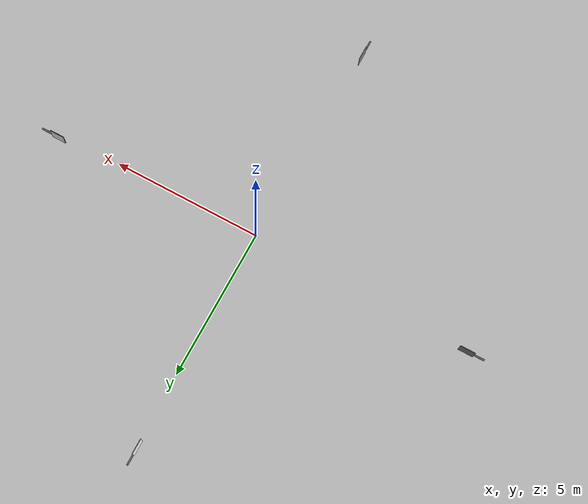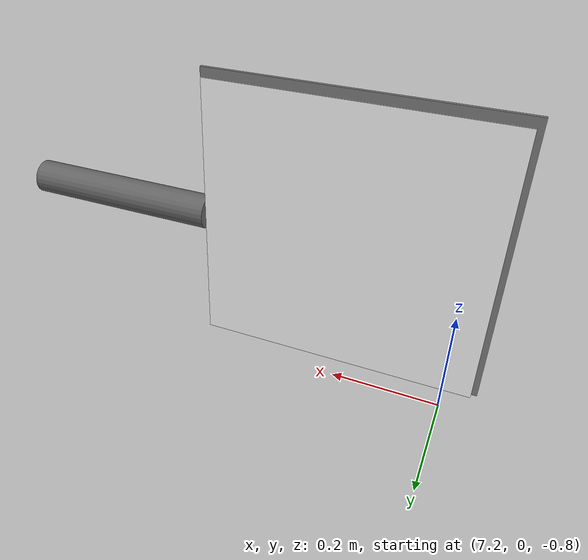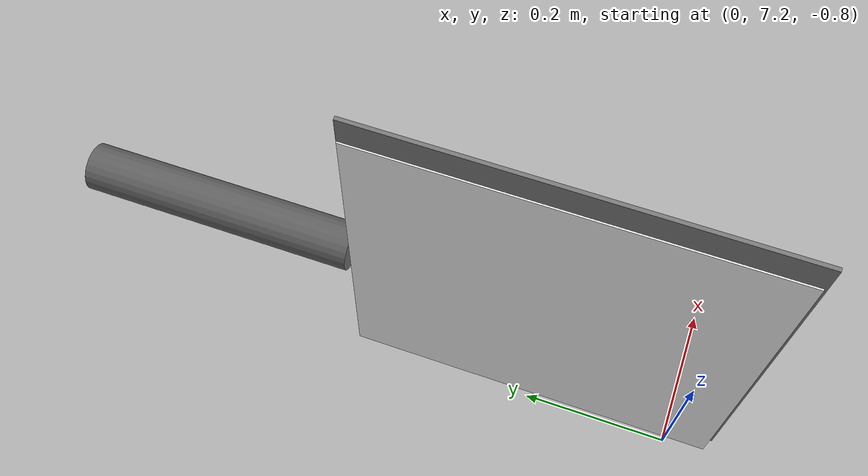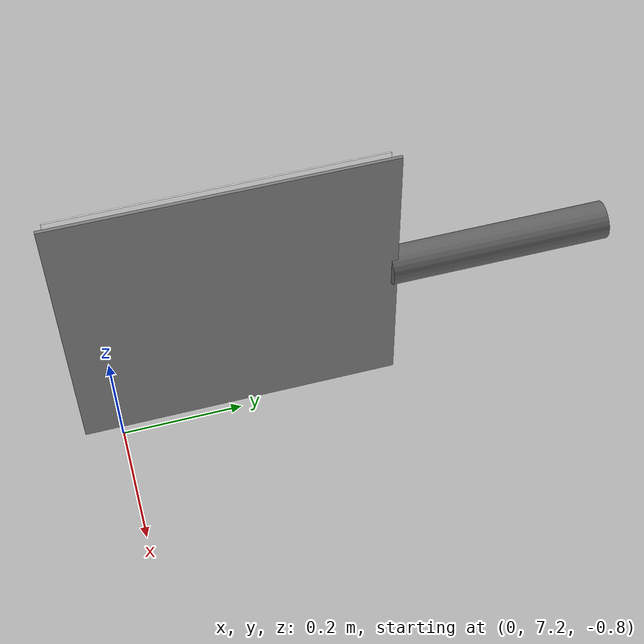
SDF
<?xml version="1.0"?>

<sdf version="1.6">
  <world name="default">

    <include>
      <uri>model://sun</uri>
    </include>

    <model name="marker0">
      <include>
        <static>true</static>
        <uri>model://marker_0</uri>
      </include>
      <pose>8.0 0.0 -0.5 0 -1.5707963267948966 0</pose>
    </model>
    <model name="marker1">
      <include>
        <static>true</static>
        <uri>model://marker_1</uri>
      </include>
      <pose>4.898587196589413e-16 -8.0 -0.5 -1.5707963267948966 -1.5707963267948966 0</pose>
    </model>
    <model name="marker2">
      <include>
        <static>true</static>
        <uri>model://marker_2</uri>
      </include>
      <pose>-8.0 -9.797174393178826e-16 -0.5 -3.141592653589793 -1.5707963267948966 0</pose>
    </model>
    <model name="marker3">
      <include>
        <static>true</static>
        <uri>model://marker_3</uri>
      </include>
      <pose>-1.4695761589768238e-15 8.0 -0.5 -4.71238898038469 -1.5707963267948966 0</pose>
    </model>
  </world>
</sdf>

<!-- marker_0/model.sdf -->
<sdf version="1.6">
  <model name="aruco_marker_0">
    <static>true</static>
    <link name="link">
      <!-- Support pole: top reaches the panel's lower edge (0.35 m), no overlap -->
      <visual name="pole">
        <pose>0 0 0.175 0 0 0</pose>
        <geometry><cylinder><radius>0.03</radius><length>0.35</length></cylinder></geometry>
        <material>
          <ambient>0.3 0.3 0.3 1</ambient>
          <diffuse>0.4 0.4 0.4 1</diffuse>
          <specular>0.1 0.1 0.1 1</specular>
        </material>
      </visual>
      <collision name="pole_col">
        <pose>0 0 0.175 0 0 0</pose>
        <geometry><cylinder><radius>0.03</radius><length>0.35</length></cylinder></geometry>
      </collision>
      <!-- Marker panel 0.50 m, center 0.6 m high; lower edge at 0.35 m -->
      <!-- Local +Y face carries the texture; world yaw aims it inward. -->
      <visual name="marker">
        <pose>0 0.011 0.6 1.5708 0 0</pose>
        <geometry><box><size>0.50 0.50 0.002</size></box></geometry>
        <material>
          <ambient>1.0 1.0 1.0 1</ambient>
          <diffuse>1.0 1.0 1.0 1</diffuse>
          <specular>0.0 0.0 0.0 1</specular>
          <pbr>
            <metal>
              <albedo_map>model://aruco/marker_0/materials/textures/marker_0.png</albedo_map>
              <metalness>0.0</metalness>
              <roughness>1.0</roughness>
            </metal>
          </pbr>
        </material>
      </visual>
      <collision name="marker_col">
        <pose>0 0 0.6 0 0 0</pose>
        <geometry><box><size>0.50 0.04 0.52</size></box></geometry>
      </collision>
      <!-- Opaque gray backing on the local -Y side: occludes the texture from
           behind so a camera facing the back cannot detect a mirrored (flipped) marker. -->
      <visual name="back_panel">
        <pose>0 -0.01 0.6 1.5708 0 0</pose>
        <geometry><box><size>0.52 0.52 0.005</size></box></geometry>
        <material>
          <ambient>0.5 0.5 0.5 1</ambient>
          <diffuse>0.5 0.5 0.5 1</diffuse>
          <specular>0.1 0.1 0.1 1</specular>
        </material>
      </visual>
    </link>
  </model>
</sdf>

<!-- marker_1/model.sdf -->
<sdf version="1.6">
  <model name="aruco_marker_1">
    <static>true</static>
    <link name="link">
      <!-- Support pole: top reaches the panel's lower edge (0.35 m), no overlap -->
      <visual name="pole">
        <pose>0 0 0.175 0 0 0</pose>
        <geometry><cylinder><radius>0.03</radius><length>0.35</length></cylinder></geometry>
        <material>
          <ambient>0.3 0.3 0.3 1</ambient>
          <diffuse>0.4 0.4 0.4 1</diffuse>
          <specular>0.1 0.1 0.1 1</specular>
        </material>
      </visual>
      <collision name="pole_col">
        <pose>0 0 0.175 0 0 0</pose>
        <geometry><cylinder><radius>0.03</radius><length>0.35</length></cylinder></geometry>
      </collision>
      <!-- Marker panel 0.50 m, center 0.6 m high; lower edge at 0.35 m -->
      <!-- Local +Y face carries the texture; world yaw aims it inward. -->
      <visual name="marker">
        <pose>0 0.011 0.6 1.5708 0 0</pose>
        <geometry><box><size>0.50 0.50 0.002</size></box></geometry>
        <material>
          <ambient>1.0 1.0 1.0 1</ambient>
          <diffuse>1.0 1.0 1.0 1</diffuse>
          <specular>0.0 0.0 0.0 1</specular>
          <pbr>
            <metal>
              <albedo_map>model://aruco/marker_1/materials/textures/marker_1.png</albedo_map>
              <metalness>0.0</metalness>
              <roughness>1.0</roughness>
            </metal>
          </pbr>
        </material>
      </visual>
      <collision name="marker_col">
        <pose>0 0 0.6 0 0 0</pose>
        <geometry><box><size>0.50 0.04 0.52</size></box></geometry>
      </collision>
      <!-- Opaque gray backing on the local -Y side: occludes the texture from
           behind so a camera facing the back cannot detect a mirrored (flipped) marker. -->
      <visual name="back_panel">
        <pose>0 -0.01 0.6 1.5708 0 0</pose>
        <geometry><box><size>0.52 0.52 0.005</size></box></geometry>
        <material>
          <ambient>0.5 0.5 0.5 1</ambient>
          <diffuse>0.5 0.5 0.5 1</diffuse>
          <specular>0.1 0.1 0.1 1</specular>
        </material>
      </visual>
    </link>
  </model>
</sdf>

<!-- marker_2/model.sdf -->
<sdf version="1.6">
  <model name="aruco_marker_2">
    <static>true</static>
    <link name="link">
      <!-- Support pole: top reaches the panel's lower edge (0.35 m), no overlap -->
      <visual name="pole">
        <pose>0 0 0.175 0 0 0</pose>
        <geometry><cylinder><radius>0.03</radius><length>0.35</length></cylinder></geometry>
        <material>
          <ambient>0.3 0.3 0.3 1</ambient>
          <diffuse>0.4 0.4 0.4 1</diffuse>
          <specular>0.1 0.1 0.1 1</specular>
        </material>
      </visual>
      <collision name="pole_col">
        <pose>0 0 0.175 0 0 0</pose>
        <geometry><cylinder><radius>0.03</radius><length>0.35</length></cylinder></geometry>
      </collision>
      <!-- Marker panel 0.50 m, center 0.6 m high; lower edge at 0.35 m -->
      <!-- Local +Y face carries the texture; world yaw aims it inward. -->
      <visual name="marker">
        <pose>0 0.011 0.6 1.5708 0 0</pose>
        <geometry><box><size>0.50 0.50 0.002</size></box></geometry>
        <material>
          <ambient>1.0 1.0 1.0 1</ambient>
          <diffuse>1.0 1.0 1.0 1</diffuse>
          <specular>0.0 0.0 0.0 1</specular>
          <pbr>
            <metal>
              <albedo_map>model://aruco/marker_2/materials/textures/marker_2.png</albedo_map>
              <metalness>0.0</metalness>
              <roughness>1.0</roughness>
            </metal>
          </pbr>
        </material>
      </visual>
      <collision name="marker_col">
        <pose>0 0 0.6 0 0 0</pose>
        <geometry><box><size>0.50 0.04 0.52</size></box></geometry>
      </collision>
      <!-- Opaque gray backing on the local -Y side: occludes the texture from
           behind so a camera facing the back cannot detect a mirrored (flipped) marker. -->
      <visual name="back_panel">
        <pose>0 -0.01 0.6 1.5708 0 0</pose>
        <geometry><box><size>0.52 0.52 0.005</size></box></geometry>
        <material>
          <ambient>0.5 0.5 0.5 1</ambient>
          <diffuse>0.5 0.5 0.5 1</diffuse>
          <specular>0.1 0.1 0.1 1</specular>
        </material>
      </visual>
    </link>
  </model>
</sdf>

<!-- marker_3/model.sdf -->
<sdf version="1.6">
  <model name="aruco_marker_3">
    <static>true</static>
    <link name="link">
      <!-- Support pole: top reaches the panel's lower edge (0.35 m), no overlap -->
      <visual name="pole">
        <pose>0 0 0.175 0 0 0</pose>
        <geometry><cylinder><radius>0.03</radius><length>0.35</length></cylinder></geometry>
        <material>
          <ambient>0.3 0.3 0.3 1</ambient>
          <diffuse>0.4 0.4 0.4 1</diffuse>
          <specular>0.1 0.1 0.1 1</specular>
        </material>
      </visual>
      <collision name="pole_col">
        <pose>0 0 0.175 0 0 0</pose>
        <geometry><cylinder><radius>0.03</radius><length>0.35</length></cylinder></geometry>
      </collision>
      <!-- Marker panel 0.50 m, center 0.6 m high; lower edge at 0.35 m -->
      <!-- Local +Y face carries the texture; world yaw aims it inward. -->
      <visual name="marker">
        <pose>0 0.011 0.6 1.5708 0 0</pose>
        <geometry><box><size>0.50 0.50 0.002</size></box></geometry>
        <material>
          <ambient>1.0 1.0 1.0 1</ambient>
          <diffuse>1.0 1.0 1.0 1</diffuse>
          <specular>0.0 0.0 0.0 1</specular>
          <pbr>
            <metal>
              <albedo_map>model://aruco/marker_3/materials/textures/marker_3.png</albedo_map>
              <metalness>0.0</metalness>
              <roughness>1.0</roughness>
            </metal>
          </pbr>
        </material>
      </visual>
      <collision name="marker_col">
        <pose>0 0 0.6 0 0 0</pose>
        <geometry><box><size>0.50 0.04 0.52</size></box></geometry>
      </collision>
      <!-- Opaque gray backing on the local -Y side: occludes the texture from
           behind so a camera facing the back cannot detect a mirrored (flipped) marker. -->
      <visual name="back_panel">
        <pose>0 -0.01 0.6 1.5708 0 0</pose>
        <geometry><box><size>0.52 0.52 0.005</size></box></geometry>
        <material>
          <ambient>0.5 0.5 0.5 1</ambient>
          <diffuse>0.5 0.5 0.5 1</diffuse>
          <specular>0.1 0.1 0.1 1</specular>
        </material>
      </visual>
    </link>
  </model>
</sdf>
